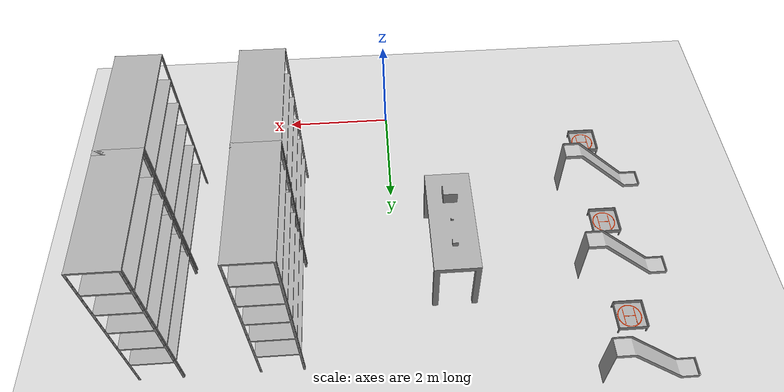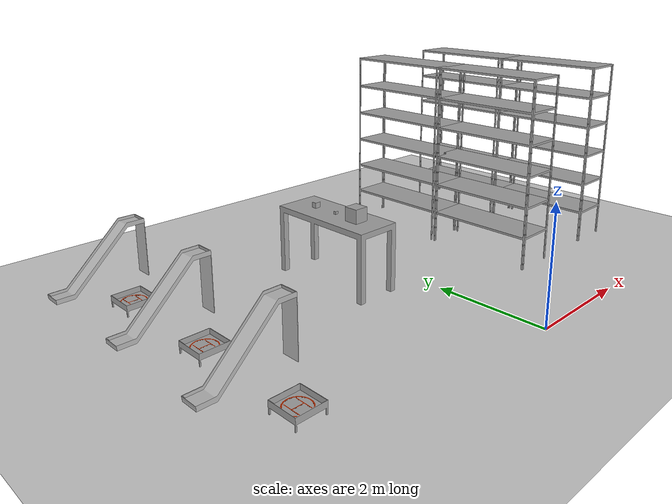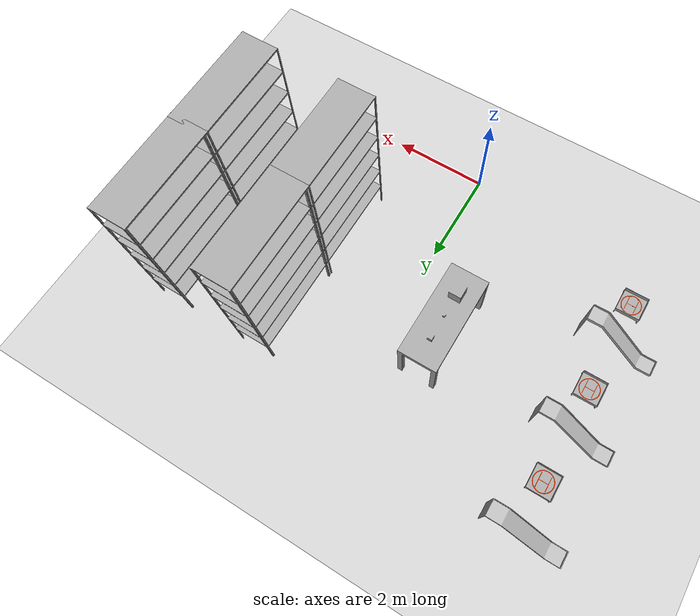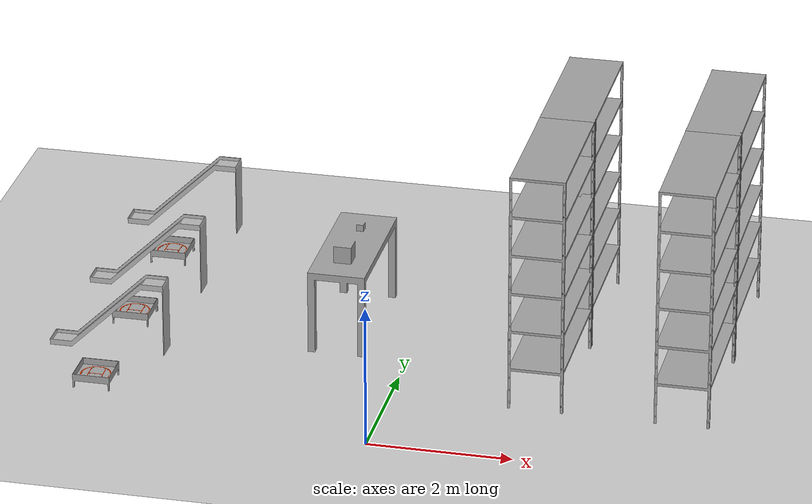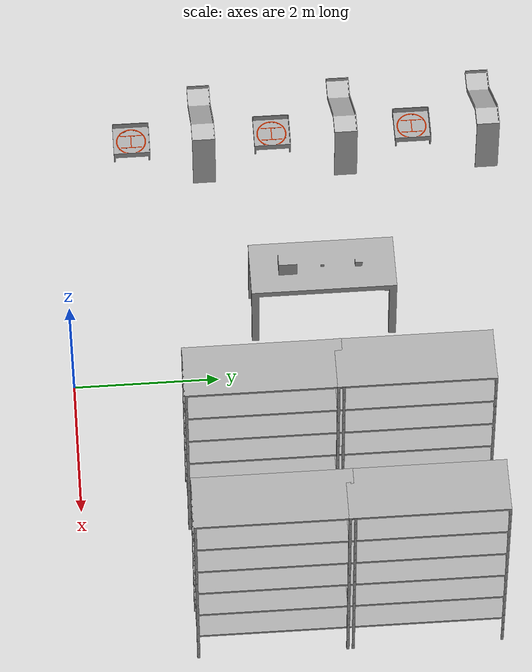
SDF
<sdf version="1.5">
 <world name="indoor_world">
  <include><uri>model://sun</uri></include>
  <include><uri>model://asphalt_plane</uri></include>
  <include>
   <static>true</static>
   <uri>model://prateleira</uri>
   <name>prateleira1</name>
   <pose>4 2.5 0 0 0 1.570796325</pose>
  </include>
  <include>
   <static>true</static>
   <uri>model://prateleira</uri>
   <name>prateleira2</name>
   <pose>2 2.5 0 0 0 1.570796325</pose>
  </include>
  <include>
   <static>true</static>
   <uri>model://prateleira</uri>
   <name>prateleira3</name>
   <pose>4 4.5 0 0 0 1.570796325</pose>
  </include>
  <include>
   <static>true</static>
   <uri>model://prateleira</uri>
   <name>prateleira4</name>
   <pose>2 4.5 0 0 0 1.570796325</pose>
  </include>
  <include>
   <static>true</static>
   <uri>model://mesa</uri>
   <name>mesa</name>
   <pose>-1 3.5 0 0 0 1.570796325</pose>
  </include>
  <include>
   <static>true</static>
   <uri>model://rampa</uri>
   <name>rampa1</name>
   <pose>-4 2 0.05 0 0 -1.570796325</pose>
  </include>
  <include>
   <static>true</static>
   <uri>model://rampa</uri>
   <name>rampa3</name>
   <pose>-4 4 0.05 0 0 -1.570796325</pose>
  </include>
  <include>
   <static>true</static>
   <uri>model://rampa</uri>
   <name>rampa3</name>
   <pose>-4 6 0.05 0 0 -1.570796325</pose>
  </include>
  <include>
   <static>true</static>
   <uri>model://droneponto</uri>
   <name>droneponto1</name>
   <pose>-4 1 0 0 0 0</pose>
  </include>
  <include>
   <static>true</static>
   <uri>model://droneponto</uri>
   <name>droneponto2</name>
   <pose>-4 3 0 0 0 0</pose>
  </include>
  <include>
   <static>true</static>
   <uri>model://droneponto</uri>
   <name>droneponto3</name>
   <pose>-4 5 0 0 0 0</pose>
  </include>
 </world>
</sdf>

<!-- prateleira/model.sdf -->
<sdf version="1.5">
  <model name="prateleira">
    <static>true</static>
    <link name="shelve_link">
      <collision name="shelve_collision">
        <geometry>
          <mesh>
            <uri>model://prateleira/meshes/prateleira.dae</uri>
          </mesh>
        </geometry>
      </collision>

      <visual name="table_mesh">
        <cast_shadows>true</cast_shadows>
        <geometry>
          <mesh>
            <uri>model://prateleira/meshes/prateleira.dae</uri>
          </mesh>
        </geometry>
      </visual>
    </link>
  </model>
</sdf>

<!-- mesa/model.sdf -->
<sdf version="1.5">
  <model name="my_table">
    <static>true</static>
    <link name="table_link">
      <collision name="table_collision">
        <geometry>
          <box>
            <size>1.5 1.5 1.5</size>
          </box>
        </geometry>
      </collision>

      <visual name="table_mesh">
        <cast_shadows>true</cast_shadows>
        <geometry>
          <mesh>
            <uri>model://mesa/meshes/mesa.dae</uri>
          </mesh>
        </geometry>
      </visual>
    </link>
  </model>
</sdf>

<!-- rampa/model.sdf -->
<sdf version="1.5">
  <model name="rampa">
    <static>true</static>
    <link name="rampa_link">
      <collision name="rampa_collision">
        <geometry>
          <mesh>
            <uri>model://rampa/meshes/rampa.dae</uri>
          </mesh>
        </geometry>
      </collision>

      <visual name="rampa_mesh">
        <cast_shadows>true</cast_shadows>
        <geometry>
          <mesh>
            <uri>model://rampa/meshes/rampa.dae</uri>
          </mesh>
        </geometry>
      </visual>
    </link>
  </model>
</sdf>

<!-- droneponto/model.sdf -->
<sdf version="1.5">
  <model name="droneponto">
    <static>true</static>
    <link name="droneponto_link">
      <collision name="droneponto_collision">
        <geometry>
          <mesh>
            <uri>model://droneponto/meshes/dronePonto.dae</uri>
          </mesh>
        </geometry>
      </collision>

      <visual name="droneponto_mesh">
        <cast_shadows>true</cast_shadows>
        <geometry>
          <mesh>
            <uri>model://droneponto/meshes/dronePonto.dae</uri>
          </mesh>
        </geometry>
      </visual>
    </link>
  </model>
</sdf>
